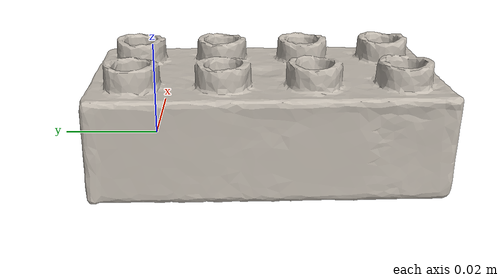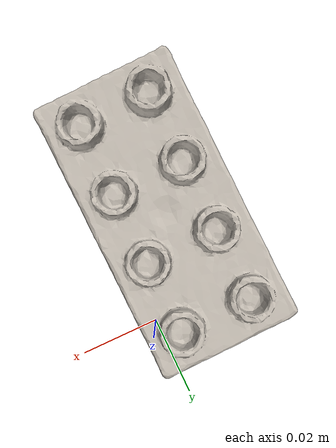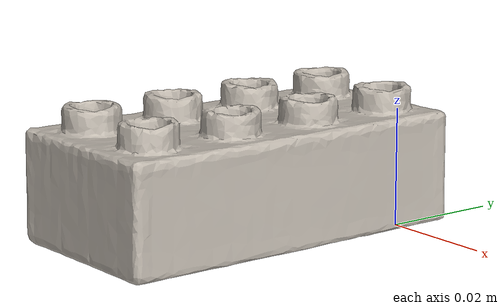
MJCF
<mujoco model="lego_c">
  <compiler angle="radian" meshdir="assets" texturedir="assets"/>
    <default>
        <default class="ycb_col">
            <geom contype="1" class="ycb_col" conaffinity="1" group="3" rgba=".4 .5 .6 1"/>
        </default>
        <default class="ycb_viz">
            <geom contype="0" class="ycb_col" conaffinity="0" type="mesh" mass="0"/>
        </default>
    </default>
  <asset>
    <texture type="2d" name="c_lego_duplo_tex" file="texture_map.png"/>
    <material name="c_lego_duplo_mat" texture="c_lego_duplo_tex" specular="0.5" shininess="0.5"/>
    <mesh file="textured.obj" name="c_lego_duplo"/>
    <mesh file="textured_collision_0.obj" name="c_lego_duplo_collision_0"/>
    <mesh file="textured_collision_1.obj" name="c_lego_duplo_collision_1"/>
    <mesh file="textured_collision_2.obj" name="c_lego_duplo_collision_2"/>
    <mesh file="textured_collision_3.obj" name="c_lego_duplo_collision_3"/>
    <mesh file="textured_collision_4.obj" name="c_lego_duplo_collision_4"/>
    <mesh file="textured_collision_5.obj" name="c_lego_duplo_collision_5"/>
    <mesh file="textured_collision_6.obj" name="c_lego_duplo_collision_6"/>
    <mesh file="textured_collision_7.obj" name="c_lego_duplo_collision_7"/>
    <mesh file="textured_collision_8.obj" name="c_lego_duplo_collision_8"/>
    <mesh file="textured_collision_9.obj" name="c_lego_duplo_collision_9"/>
    <mesh file="textured_collision_10.obj" name="c_lego_duplo_collision_10"/>
    <mesh file="textured_collision_11.obj" name="c_lego_duplo_collision_11"/>
    <mesh file="textured_collision_12.obj" name="c_lego_duplo_collision_12"/>
    <mesh file="textured_collision_13.obj" name="c_lego_duplo_collision_13"/>
    <mesh file="textured_collision_14.obj" name="c_lego_duplo_collision_14"/>
    <mesh file="textured_collision_15.obj" name="c_lego_duplo_collision_15"/>
    <mesh file="textured_collision_16.obj" name="c_lego_duplo_collision_16"/>
    <mesh file="textured_collision_17.obj" name="c_lego_duplo_collision_17"/>
    <mesh file="textured_collision_18.obj" name="c_lego_duplo_collision_18"/>
    <mesh file="textured_collision_19.obj" name="c_lego_duplo_collision_19"/>
    <mesh file="textured_collision_20.obj" name="c_lego_duplo_collision_20"/>
    <mesh file="textured_collision_21.obj" name="c_lego_duplo_collision_21"/>
    <mesh file="textured_collision_22.obj" name="c_lego_duplo_collision_22"/>
    <mesh file="textured_collision_23.obj" name="c_lego_duplo_collision_23"/>
    <mesh file="textured_collision_24.obj" name="c_lego_duplo_collision_24"/>
    <mesh file="textured_collision_25.obj" name="c_lego_duplo_collision_25"/>
    <mesh file="textured_collision_26.obj" name="c_lego_duplo_collision_26"/>
    <mesh file="textured_collision_27.obj" name="c_lego_duplo_collision_27"/>
    <mesh file="textured_collision_28.obj" name="c_lego_duplo_collision_28"/>
    <mesh file="textured_collision_29.obj" name="c_lego_duplo_collision_29"/>
    <mesh file="textured_collision_30.obj" name="c_lego_duplo_collision_30"/>
    <mesh file="textured_collision_31.obj" name="c_lego_duplo_collision_31"/>
    <mesh file="textured_collision_32.obj" name="c_lego_duplo_collision_32"/>
    <mesh file="textured_collision_33.obj" name="c_lego_duplo_collision_33"/>
    <mesh file="textured_collision_34.obj" name="c_lego_duplo_collision_34"/>
    <mesh file="textured_collision_35.obj" name="c_lego_duplo_collision_35"/>
    <mesh file="textured_collision_36.obj" name="c_lego_duplo_collision_36"/>
    <mesh file="textured_collision_37.obj" name="c_lego_duplo_collision_37"/>
    <mesh file="textured_collision_38.obj" name="c_lego_duplo_collision_38"/>
    <mesh file="textured_collision_39.obj" name="c_lego_duplo_collision_39"/>
    <mesh file="textured_collision_40.obj" name="c_lego_duplo_collision_40"/>
    <mesh file="textured_collision_41.obj" name="c_lego_duplo_collision_41"/>
    <mesh file="textured_collision_42.obj" name="c_lego_duplo_collision_42"/>
    <mesh file="textured_collision_43.obj" name="c_lego_duplo_collision_43"/>
    <mesh file="textured_collision_44.obj" name="c_lego_duplo_collision_44"/>
    <mesh file="textured_collision_45.obj" name="c_lego_duplo_collision_45"/>
    <mesh file="textured_collision_46.obj" name="c_lego_duplo_collision_46"/>
    <mesh file="textured_collision_47.obj" name="c_lego_duplo_collision_47"/>
    <mesh file="textured_collision_48.obj" name="c_lego_duplo_collision_48"/>
    <mesh file="textured_collision_49.obj" name="c_lego_duplo_collision_49"/>
    <mesh file="textured_collision_50.obj" name="c_lego_duplo_collision_50"/>
    <mesh file="textured_collision_51.obj" name="c_lego_duplo_collision_51"/>
    <mesh file="textured_collision_52.obj" name="c_lego_duplo_collision_52"/>
    <mesh file="textured_collision_53.obj" name="c_lego_duplo_collision_53"/>
    <mesh file="textured_collision_54.obj" name="c_lego_duplo_collision_54"/>
    <mesh file="textured_collision_55.obj" name="c_lego_duplo_collision_55"/>
    <mesh file="textured_collision_56.obj" name="c_lego_duplo_collision_56"/>
    <mesh file="textured_collision_57.obj" name="c_lego_duplo_collision_57"/>
    <mesh file="textured_collision_58.obj" name="c_lego_duplo_collision_58"/>
    <mesh file="textured_collision_59.obj" name="c_lego_duplo_collision_59"/>
    <mesh file="textured_collision_60.obj" name="c_lego_duplo_collision_60"/>
    <mesh file="textured_collision_61.obj" name="c_lego_duplo_collision_61"/>
    <mesh file="textured_collision_62.obj" name="c_lego_duplo_collision_62"/>
    <mesh file="textured_collision_63.obj" name="c_lego_duplo_collision_63"/>
    <mesh file="textured_collision_64.obj" name="c_lego_duplo_collision_64"/>
    <mesh file="textured_collision_65.obj" name="c_lego_duplo_collision_65"/>
    <mesh file="textured_collision_66.obj" name="c_lego_duplo_collision_66"/>
    <mesh file="textured_collision_67.obj" name="c_lego_duplo_collision_67"/>
    <mesh file="textured_collision_68.obj" name="c_lego_duplo_collision_68"/>
    <mesh file="textured_collision_69.obj" name="c_lego_duplo_collision_69"/>
    <mesh file="textured_collision_70.obj" name="c_lego_duplo_collision_70"/>
    <mesh file="textured_collision_71.obj" name="c_lego_duplo_collision_71"/>
    <mesh file="textured_collision_72.obj" name="c_lego_duplo_collision_72"/>
    <mesh file="textured_collision_73.obj" name="c_lego_duplo_collision_73"/>
    <mesh file="textured_collision_74.obj" name="c_lego_duplo_collision_74"/>
    <mesh file="textured_collision_75.obj" name="c_lego_duplo_collision_75"/>
    <mesh file="textured_collision_76.obj" name="c_lego_duplo_collision_76"/>
  </asset>
  <worldbody>
      <geom material="c_lego_duplo_mat" mesh="c_lego_duplo" class="ycb_viz"/>
      <geom mesh="c_lego_duplo_collision_0" class="ycb_col" conaffinity="1" condim="4" friction="0.1 0.1 0.1" mass="6.243741857011128e-05" rgba="1 1 1 1" solimp="0.99 0.99 0.01" solref=".001 0.1" type="mesh" group="3"/>
      <geom mesh="c_lego_duplo_collision_1" class="ycb_col" conaffinity="1" condim="4" friction="0.1 0.1 0.1" mass="5.094433629767438e-05" rgba="1 1 1 1" solimp="0.99 0.99 0.01" solref=".001 0.1" type="mesh" group="3"/>
      <geom mesh="c_lego_duplo_collision_2" class="ycb_col" conaffinity="1" condim="4" friction="0.1 0.1 0.1" mass="0.00011398401338695941" rgba="1 1 1 1" solimp="0.99 0.99 0.01" solref=".001 0.1" type="mesh" group="3"/>
      <geom mesh="c_lego_duplo_collision_3" class="ycb_col" conaffinity="1" condim="4" friction="0.1 0.1 0.1" mass="0.00014485656157768608" rgba="1 1 1 1" solimp="0.99 0.99 0.01" solref=".001 0.1" type="mesh" group="3"/>
      <geom mesh="c_lego_duplo_collision_4" class="ycb_col" conaffinity="1" condim="4" friction="0.1 0.1 0.1" mass="8.468457976299685e-05" rgba="1 1 1 1" solimp="0.99 0.99 0.01" solref=".001 0.1" type="mesh" group="3"/>
      <geom mesh="c_lego_duplo_collision_5" class="ycb_col" conaffinity="1" condim="4" friction="0.1 0.1 0.1" mass="0.00010260822432115657" rgba="1 1 1 1" solimp="0.99 0.99 0.01" solref=".001 0.1" type="mesh" group="3"/>
      <geom mesh="c_lego_duplo_collision_6" class="ycb_col" conaffinity="1" condim="4" friction="0.1 0.1 0.1" mass="0.000175630461382617" rgba="1 1 1 1" solimp="0.99 0.99 0.01" solref=".001 0.1" type="mesh" group="3"/>
      <geom mesh="c_lego_duplo_collision_7" class="ycb_col" conaffinity="1" condim="4" friction="0.1 0.1 0.1" mass="6.819736514743654e-05" rgba="1 1 1 1" solimp="0.99 0.99 0.01" solref=".001 0.1" type="mesh" group="3"/>
      <geom mesh="c_lego_duplo_collision_8" class="ycb_col" conaffinity="1" condim="4" friction="0.1 0.1 0.1" mass="9.334940969953728e-05" rgba="1 1 1 1" solimp="0.99 0.99 0.01" solref=".001 0.1" type="mesh" group="3"/>
      <geom mesh="c_lego_duplo_collision_9" class="ycb_col" conaffinity="1" condim="4" friction="0.1 0.1 0.1" mass="5.656674066677889e-05" rgba="1 1 1 1" solimp="0.99 0.99 0.01" solref=".001 0.1" type="mesh" group="3"/>
      <geom mesh="c_lego_duplo_collision_10" class="ycb_col" conaffinity="1" condim="4" friction="0.1 0.1 0.1" mass="0.00018037303978606531" rgba="1 1 1 1" solimp="0.99 0.99 0.01" solref=".001 0.1" type="mesh" group="3"/>
      <geom mesh="c_lego_duplo_collision_11" class="ycb_col" conaffinity="1" condim="4" friction="0.1 0.1 0.1" mass="7.576989654136922e-05" rgba="1 1 1 1" solimp="0.99 0.99 0.01" solref=".001 0.1" type="mesh" group="3"/>
      <geom mesh="c_lego_duplo_collision_12" class="ycb_col" conaffinity="1" condim="4" friction="0.1 0.1 0.1" mass="0.00016094229515222747" rgba="1 1 1 1" solimp="0.99 0.99 0.01" solref=".001 0.1" type="mesh" group="3"/>
      <geom mesh="c_lego_duplo_collision_13" class="ycb_col" conaffinity="1" condim="4" friction="0.1 0.1 0.1" mass="0.00011659608486516364" rgba="1 1 1 1" solimp="0.99 0.99 0.01" solref=".001 0.1" type="mesh" group="3"/>
      <geom mesh="c_lego_duplo_collision_14" class="ycb_col" conaffinity="1" condim="4" friction="0.1 0.1 0.1" mass="0.0002454913033750693" rgba="1 1 1 1" solimp="0.99 0.99 0.01" solref=".001 0.1" type="mesh" group="3"/>
      <geom mesh="c_lego_duplo_collision_15" class="ycb_col" conaffinity="1" condim="4" friction="0.1 0.1 0.1" mass="1.7447713180114873e-05" rgba="1 1 1 1" solimp="0.99 0.99 0.01" solref=".001 0.1" type="mesh" group="3"/>
      <geom mesh="c_lego_duplo_collision_16" class="ycb_col" conaffinity="1" condim="4" friction="0.1 0.1 0.1" mass="0.00016511387004863193" rgba="1 1 1 1" solimp="0.99 0.99 0.01" solref=".001 0.1" type="mesh" group="3"/>
      <geom mesh="c_lego_duplo_collision_17" class="ycb_col" conaffinity="1" condim="4" friction="0.1 0.1 0.1" mass="0.00012284687243340712" rgba="1 1 1 1" solimp="0.99 0.99 0.01" solref=".001 0.1" type="mesh" group="3"/>
      <geom mesh="c_lego_duplo_collision_18" class="ycb_col" conaffinity="1" condim="4" friction="0.1 0.1 0.1" mass="7.497572557030763e-05" rgba="1 1 1 1" solimp="0.99 0.99 0.01" solref=".001 0.1" type="mesh" group="3"/>
      <geom mesh="c_lego_duplo_collision_19" class="ycb_col" conaffinity="1" condim="4" friction="0.1 0.1 0.1" mass="5.559460869383585e-05" rgba="1 1 1 1" solimp="0.99 0.99 0.01" solref=".001 0.1" type="mesh" group="3"/>
      <geom mesh="c_lego_duplo_collision_20" class="ycb_col" conaffinity="1" condim="4" friction="0.1 0.1 0.1" mass="0.0001252741876391416" rgba="1 1 1 1" solimp="0.99 0.99 0.01" solref=".001 0.1" type="mesh" group="3"/>
      <geom mesh="c_lego_duplo_collision_21" class="ycb_col" conaffinity="1" condim="4" friction="0.1 0.1 0.1" mass="7.705130877597521e-05" rgba="1 1 1 1" solimp="0.99 0.99 0.01" solref=".001 0.1" type="mesh" group="3"/>
      <geom mesh="c_lego_duplo_collision_22" class="ycb_col" conaffinity="1" condim="4" friction="0.1 0.1 0.1" mass="5.23201405992631e-06" rgba="1 1 1 1" solimp="0.99 0.99 0.01" solref=".001 0.1" type="mesh" group="3"/>
      <geom mesh="c_lego_duplo_collision_23" class="ycb_col" conaffinity="1" condim="4" friction="0.1 0.1 0.1" mass="0.00015256152963092804" rgba="1 1 1 1" solimp="0.99 0.99 0.01" solref=".001 0.1" type="mesh" group="3"/>
      <geom mesh="c_lego_duplo_collision_24" class="ycb_col" conaffinity="1" condim="4" friction="0.1 0.1 0.1" mass="1.5262836823106534e-05" rgba="1 1 1 1" solimp="0.99 0.99 0.01" solref=".001 0.1" type="mesh" group="3"/>
      <geom mesh="c_lego_duplo_collision_25" class="ycb_col" conaffinity="1" condim="4" friction="0.1 0.1 0.1" mass="3.6217047992813624e-05" rgba="1 1 1 1" solimp="0.99 0.99 0.01" solref=".001 0.1" type="mesh" group="3"/>
      <geom mesh="c_lego_duplo_collision_26" class="ycb_col" conaffinity="1" condim="4" friction="0.1 0.1 0.1" mass="9.034747623105665e-05" rgba="1 1 1 1" solimp="0.99 0.99 0.01" solref=".001 0.1" type="mesh" group="3"/>
      <geom mesh="c_lego_duplo_collision_27" class="ycb_col" conaffinity="1" condim="4" friction="0.1 0.1 0.1" mass="3.288546118377597e-05" rgba="1 1 1 1" solimp="0.99 0.99 0.01" solref=".001 0.1" type="mesh" group="3"/>
      <geom mesh="c_lego_duplo_collision_28" class="ycb_col" conaffinity="1" condim="4" friction="0.1 0.1 0.1" mass="4.6054987514311775e-06" rgba="1 1 1 1" solimp="0.99 0.99 0.01" solref=".001 0.1" type="mesh" group="3"/>
      <geom mesh="c_lego_duplo_collision_29" class="ycb_col" conaffinity="1" condim="4" friction="0.1 0.1 0.1" mass="7.256558127718523e-05" rgba="1 1 1 1" solimp="0.99 0.99 0.01" solref=".001 0.1" type="mesh" group="3"/>
      <geom mesh="c_lego_duplo_collision_30" class="ycb_col" conaffinity="1" condim="4" friction="0.1 0.1 0.1" mass="7.178438205958829e-05" rgba="1 1 1 1" solimp="0.99 0.99 0.01" solref=".001 0.1" type="mesh" group="3"/>
      <geom mesh="c_lego_duplo_collision_31" class="ycb_col" conaffinity="1" condim="4" friction="0.1 0.1 0.1" mass="0.00013668157269835392" rgba="1 1 1 1" solimp="0.99 0.99 0.01" solref=".001 0.1" type="mesh" group="3"/>
      <geom mesh="c_lego_duplo_collision_32" class="ycb_col" conaffinity="1" condim="4" friction="0.1 0.1 0.1" mass="0.00017634628644611408" rgba="1 1 1 1" solimp="0.99 0.99 0.01" solref=".001 0.1" type="mesh" group="3"/>
      <geom mesh="c_lego_duplo_collision_33" class="ycb_col" conaffinity="1" condim="4" friction="0.1 0.1 0.1" mass="0.0002499543977300488" rgba="1 1 1 1" solimp="0.99 0.99 0.01" solref=".001 0.1" type="mesh" group="3"/>
      <geom mesh="c_lego_duplo_collision_34" class="ycb_col" conaffinity="1" condim="4" friction="0.1 0.1 0.1" mass="3.939701776648688e-05" rgba="1 1 1 1" solimp="0.99 0.99 0.01" solref=".001 0.1" type="mesh" group="3"/>
      <geom mesh="c_lego_duplo_collision_35" class="ycb_col" conaffinity="1" condim="4" friction="0.1 0.1 0.1" mass="0.00034833553636479174" rgba="1 1 1 1" solimp="0.99 0.99 0.01" solref=".001 0.1" type="mesh" group="3"/>
      <geom mesh="c_lego_duplo_collision_36" class="ycb_col" conaffinity="1" condim="4" friction="0.1 0.1 0.1" mass="2.788384157977889e-06" rgba="1 1 1 1" solimp="0.99 0.99 0.01" solref=".001 0.1" type="mesh" group="3"/>
      <geom mesh="c_lego_duplo_collision_37" class="ycb_col" conaffinity="1" condim="4" friction="0.1 0.1 0.1" mass="4.392298927971427e-05" rgba="1 1 1 1" solimp="0.99 0.99 0.01" solref=".001 0.1" type="mesh" group="3"/>
      <geom mesh="c_lego_duplo_collision_38" class="ycb_col" conaffinity="1" condim="4" friction="0.1 0.1 0.1" mass="0.00020217874421238482" rgba="1 1 1 1" solimp="0.99 0.99 0.01" solref=".001 0.1" type="mesh" group="3"/>
      <geom mesh="c_lego_duplo_collision_39" class="ycb_col" conaffinity="1" condim="4" friction="0.1 0.1 0.1" mass="0.00016115907708412095" rgba="1 1 1 1" solimp="0.99 0.99 0.01" solref=".001 0.1" type="mesh" group="3"/>
      <geom mesh="c_lego_duplo_collision_40" class="ycb_col" conaffinity="1" condim="4" friction="0.1 0.1 0.1" mass="2.0078654116054497e-05" rgba="1 1 1 1" solimp="0.99 0.99 0.01" solref=".001 0.1" type="mesh" group="3"/>
      <geom mesh="c_lego_duplo_collision_41" class="ycb_col" conaffinity="1" condim="4" friction="0.1 0.1 0.1" mass="3.226065479673272e-05" rgba="1 1 1 1" solimp="0.99 0.99 0.01" solref=".001 0.1" type="mesh" group="3"/>
      <geom mesh="c_lego_duplo_collision_42" class="ycb_col" conaffinity="1" condim="4" friction="0.1 0.1 0.1" mass="0.0002732255620594095" rgba="1 1 1 1" solimp="0.99 0.99 0.01" solref=".001 0.1" type="mesh" group="3"/>
      <geom mesh="c_lego_duplo_collision_43" class="ycb_col" conaffinity="1" condim="4" friction="0.1 0.1 0.1" mass="1.9847512304801817e-05" rgba="1 1 1 1" solimp="0.99 0.99 0.01" solref=".001 0.1" type="mesh" group="3"/>
      <geom mesh="c_lego_duplo_collision_44" class="ycb_col" conaffinity="1" condim="4" friction="0.1 0.1 0.1" mass="7.201171616098583e-06" rgba="1 1 1 1" solimp="0.99 0.99 0.01" solref=".001 0.1" type="mesh" group="3"/>
      <geom mesh="c_lego_duplo_collision_45" class="ycb_col" conaffinity="1" condim="4" friction="0.1 0.1 0.1" mass="0.00020614456933877844" rgba="1 1 1 1" solimp="0.99 0.99 0.01" solref=".001 0.1" type="mesh" group="3"/>
      <geom mesh="c_lego_duplo_collision_46" class="ycb_col" conaffinity="1" condim="4" friction="0.1 0.1 0.1" mass="2.0418809316205656e-05" rgba="1 1 1 1" solimp="0.99 0.99 0.01" solref=".001 0.1" type="mesh" group="3"/>
      <geom mesh="c_lego_duplo_collision_47" class="ycb_col" conaffinity="1" condim="4" friction="0.1 0.1 0.1" mass="1.0295614178975956e-05" rgba="1 1 1 1" solimp="0.99 0.99 0.01" solref=".001 0.1" type="mesh" group="3"/>
      <geom mesh="c_lego_duplo_collision_48" class="ycb_col" conaffinity="1" condim="4" friction="0.1 0.1 0.1" mass="2.736699182297251e-05" rgba="1 1 1 1" solimp="0.99 0.99 0.01" solref=".001 0.1" type="mesh" group="3"/>
      <geom mesh="c_lego_duplo_collision_49" class="ycb_col" conaffinity="1" condim="4" friction="0.1 0.1 0.1" mass="1.5955973890734e-05" rgba="1 1 1 1" solimp="0.99 0.99 0.01" solref=".001 0.1" type="mesh" group="3"/>
      <geom mesh="c_lego_duplo_collision_50" class="ycb_col" conaffinity="1" condim="4" friction="0.1 0.1 0.1" mass="1.0098132728309662e-05" rgba="1 1 1 1" solimp="0.99 0.99 0.01" solref=".001 0.1" type="mesh" group="3"/>
      <geom mesh="c_lego_duplo_collision_51" class="ycb_col" conaffinity="1" condim="4" friction="0.1 0.1 0.1" mass="1.6278038218924576e-05" rgba="1 1 1 1" solimp="0.99 0.99 0.01" solref=".001 0.1" type="mesh" group="3"/>
      <geom mesh="c_lego_duplo_collision_52" class="ycb_col" conaffinity="1" condim="4" friction="0.1 0.1 0.1" mass="2.626905967520109e-05" rgba="1 1 1 1" solimp="0.99 0.99 0.01" solref=".001 0.1" type="mesh" group="3"/>
      <geom mesh="c_lego_duplo_collision_53" class="ycb_col" conaffinity="1" condim="4" friction="0.1 0.1 0.1" mass="1.9585969999522937e-05" rgba="1 1 1 1" solimp="0.99 0.99 0.01" solref=".001 0.1" type="mesh" group="3"/>
      <geom mesh="c_lego_duplo_collision_54" class="ycb_col" conaffinity="1" condim="4" friction="0.1 0.1 0.1" mass="2.480414782158181e-05" rgba="1 1 1 1" solimp="0.99 0.99 0.01" solref=".001 0.1" type="mesh" group="3"/>
      <geom mesh="c_lego_duplo_collision_55" class="ycb_col" conaffinity="1" condim="4" friction="0.1 0.1 0.1" mass="2.0837421253867127e-05" rgba="1 1 1 1" solimp="0.99 0.99 0.01" solref=".001 0.1" type="mesh" group="3"/>
      <geom mesh="c_lego_duplo_collision_56" class="ycb_col" conaffinity="1" condim="4" friction="0.1 0.1 0.1" mass="1.6895664189241858e-05" rgba="1 1 1 1" solimp="0.99 0.99 0.01" solref=".001 0.1" type="mesh" group="3"/>
      <geom mesh="c_lego_duplo_collision_57" class="ycb_col" conaffinity="1" condim="4" friction="0.1 0.1 0.1" mass="1.9982428014801684e-05" rgba="1 1 1 1" solimp="0.99 0.99 0.01" solref=".001 0.1" type="mesh" group="3"/>
      <geom mesh="c_lego_duplo_collision_58" class="ycb_col" conaffinity="1" condim="4" friction="0.1 0.1 0.1" mass="3.155692016656556e-05" rgba="1 1 1 1" solimp="0.99 0.99 0.01" solref=".001 0.1" type="mesh" group="3"/>
      <geom mesh="c_lego_duplo_collision_59" class="ycb_col" conaffinity="1" condim="4" friction="0.1 0.1 0.1" mass="8.84572651997655e-05" rgba="1 1 1 1" solimp="0.99 0.99 0.01" solref=".001 0.1" type="mesh" group="3"/>
      <geom mesh="c_lego_duplo_collision_60" class="ycb_col" conaffinity="1" condim="4" friction="0.1 0.1 0.1" mass="1.4556638949028819e-05" rgba="1 1 1 1" solimp="0.99 0.99 0.01" solref=".001 0.1" type="mesh" group="3"/>
      <geom mesh="c_lego_duplo_collision_61" class="ycb_col" conaffinity="1" condim="4" friction="0.1 0.1 0.1" mass="6.797814536034815e-06" rgba="1 1 1 1" solimp="0.99 0.99 0.01" solref=".001 0.1" type="mesh" group="3"/>
      <geom mesh="c_lego_duplo_collision_62" class="ycb_col" conaffinity="1" condim="4" friction="0.1 0.1 0.1" mass="1.2916734175667445e-05" rgba="1 1 1 1" solimp="0.99 0.99 0.01" solref=".001 0.1" type="mesh" group="3"/>
      <geom mesh="c_lego_duplo_collision_63" class="ycb_col" conaffinity="1" condim="4" friction="0.1 0.1 0.1" mass="2.2517382451233414e-05" rgba="1 1 1 1" solimp="0.99 0.99 0.01" solref=".001 0.1" type="mesh" group="3"/>
      <geom mesh="c_lego_duplo_collision_64" class="ycb_col" conaffinity="1" condim="4" friction="0.1 0.1 0.1" mass="1.0775881368386038e-05" rgba="1 1 1 1" solimp="0.99 0.99 0.01" solref=".001 0.1" type="mesh" group="3"/>
      <geom mesh="c_lego_duplo_collision_65" class="ycb_col" conaffinity="1" condim="4" friction="0.1 0.1 0.1" mass="1.3870997269857944e-05" rgba="1 1 1 1" solimp="0.99 0.99 0.01" solref=".001 0.1" type="mesh" group="3"/>
      <geom mesh="c_lego_duplo_collision_66" class="ycb_col" conaffinity="1" condim="4" friction="0.1 0.1 0.1" mass="1.2807785305604417e-05" rgba="1 1 1 1" solimp="0.99 0.99 0.01" solref=".001 0.1" type="mesh" group="3"/>
      <geom mesh="c_lego_duplo_collision_67" class="ycb_col" conaffinity="1" condim="4" friction="0.1 0.1 0.1" mass="7.289667120721617e-06" rgba="1 1 1 1" solimp="0.99 0.99 0.01" solref=".001 0.1" type="mesh" group="3"/>
      <geom mesh="c_lego_duplo_collision_68" class="ycb_col" conaffinity="1" condim="4" friction="0.1 0.1 0.1" mass="1.2859050484820117e-05" rgba="1 1 1 1" solimp="0.99 0.99 0.01" solref=".001 0.1" type="mesh" group="3"/>
      <geom mesh="c_lego_duplo_collision_69" class="ycb_col" conaffinity="1" condim="4" friction="0.1 0.1 0.1" mass="1.1305369021646158e-05" rgba="1 1 1 1" solimp="0.99 0.99 0.01" solref=".001 0.1" type="mesh" group="3"/>
      <geom mesh="c_lego_duplo_collision_70" class="ycb_col" conaffinity="1" condim="4" friction="0.1 0.1 0.1" mass="2.3105475617417442e-05" rgba="1 1 1 1" solimp="0.99 0.99 0.01" solref=".001 0.1" type="mesh" group="3"/>
      <geom mesh="c_lego_duplo_collision_71" class="ycb_col" conaffinity="1" condim="4" friction="0.1 0.1 0.1" mass="9.785848828613373e-05" rgba="1 1 1 1" solimp="0.99 0.99 0.01" solref=".001 0.1" type="mesh" group="3"/>
      <geom mesh="c_lego_duplo_collision_72" class="ycb_col" conaffinity="1" condim="4" friction="0.1 0.1 0.1" mass="1.2620783858007353e-05" rgba="1 1 1 1" solimp="0.99 0.99 0.01" solref=".001 0.1" type="mesh" group="3"/>
      <geom mesh="c_lego_duplo_collision_73" class="ycb_col" conaffinity="1" condim="4" friction="0.1 0.1 0.1" mass="2.029726300568849e-05" rgba="1 1 1 1" solimp="0.99 0.99 0.01" solref=".001 0.1" type="mesh" group="3"/>
      <geom mesh="c_lego_duplo_collision_74" class="ycb_col" conaffinity="1" condim="4" friction="0.1 0.1 0.1" mass="7.896955562617001e-06" rgba="1 1 1 1" solimp="0.99 0.99 0.01" solref=".001 0.1" type="mesh" group="3"/>
      <geom mesh="c_lego_duplo_collision_75" class="ycb_col" conaffinity="1" condim="4" friction="0.1 0.1 0.1" mass="1.0590832370777588e-05" rgba="1 1 1 1" solimp="0.99 0.99 0.01" solref=".001 0.1" type="mesh" group="3"/>
      <geom mesh="c_lego_duplo_collision_76" class="ycb_col" conaffinity="1" condim="4" friction="0.1 0.1 0.1" mass="1.1410469283742436e-05" rgba="1 1 1 1" solimp="0.99 0.99 0.01" solref=".001 0.1" type="mesh" group="3"/>
  </worldbody>
</mujoco>
